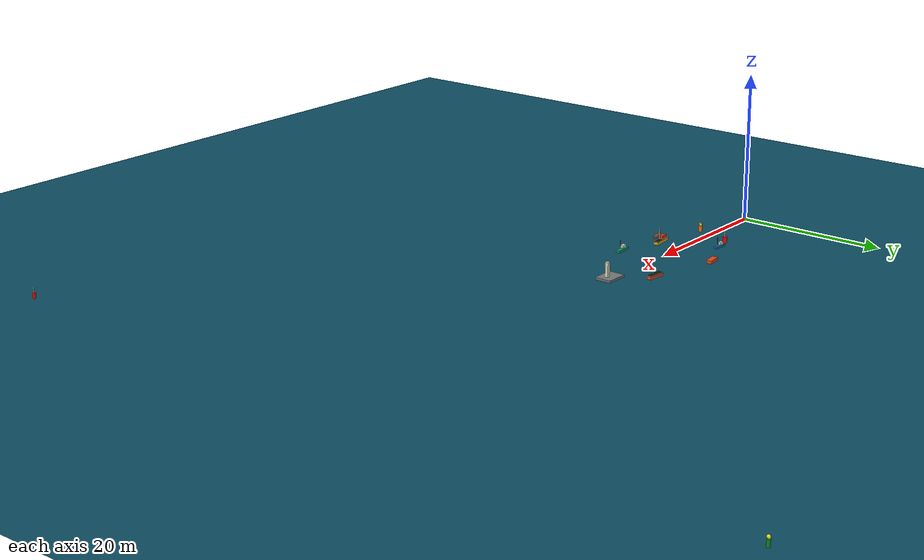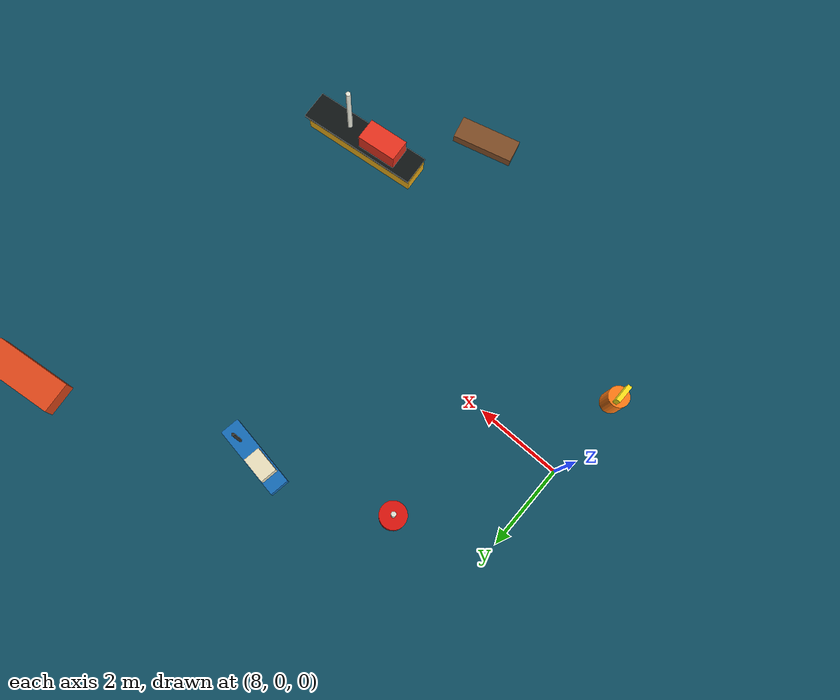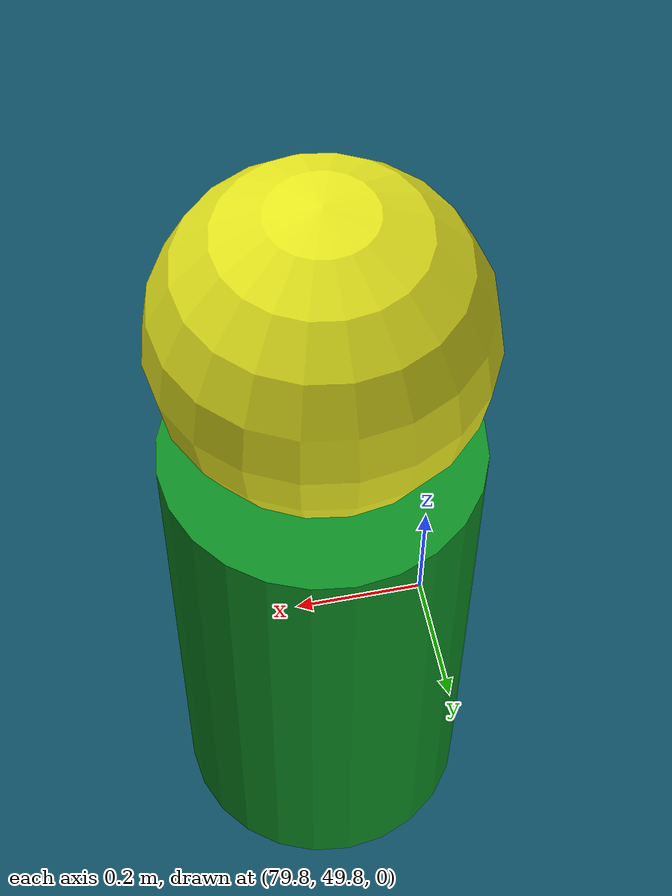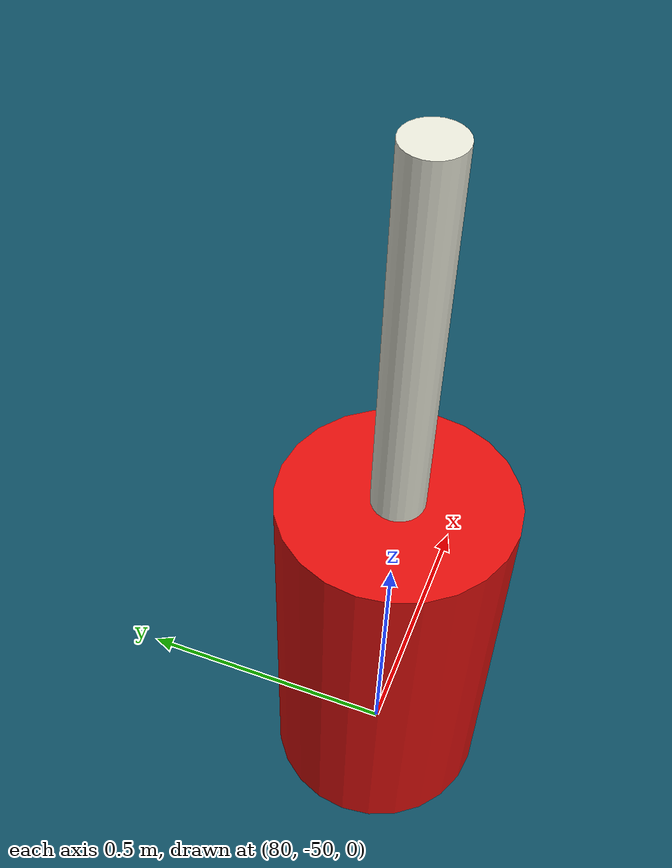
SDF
<?xml version="1.0" ?>
<sdf version="1.7">
  <world name="annotation_targets">
    <plugin name="gazebo_ros_state" filename="libgazebo_ros_state.so">
      <update_rate>30.0</update_rate>
    </plugin>

    <scene>
      <ambient>0.42 0.45 0.47 1</ambient>
      <background>0.62 0.68 0.70 1</background>
      <shadows>false</shadows>
      <fog>
        <type>linear</type>
        <color>0.70 0.74 0.76 1</color>
        <start>18.0</start>
        <end>120.0</end>
        <density>0.010</density>
      </fog>
    </scene>

    <physics name="default_physics" type="ode">
      <max_step_size>0.004</max_step_size>
      <real_time_update_rate>250</real_time_update_rate>
    </physics>

    <light name="soft_sun" type="directional">
      <pose>0 0 80 0 0 0</pose>
      <diffuse>0.70 0.70 0.68 1</diffuse>
      <specular>0.08 0.08 0.08 1</specular>
      <direction>-0.25 0.25 -0.9</direction>
      <cast_shadows>false</cast_shadows>
    </light>

    <model name="annotation_ocean_surface">
      <static>true</static>
      <link name="water">
        <visual name="water_visual">
          <pose>0 0 -0.04 0 0 0</pose>
          <geometry><plane><normal>0 0 1</normal><size>260 180</size></plane></geometry>
          <material>
            <ambient>0.04 0.20 0.26 0.95</ambient>
            <diffuse>0.05 0.30 0.38 0.95</diffuse>
            <specular>0.18 0.22 0.24 1</specular>
          </material>
        </visual>
      </link>
    </model>

    <model name="moving_vessel">
      <static>false</static>
      <pose>16 -3 0.42 0 0 0.10</pose>
      <link name="hull">
        <gravity>false</gravity>
        <inertial><mass>80</mass><inertia><ixx>18</ixx><ixy>0</ixy><ixz>0</ixz><iyy>55</iyy><iyz>0</iyz><izz>60</izz></inertia></inertial>
        <visual name="hull"><geometry><box><size>2.8 0.62 0.34</size></box></geometry><material><ambient>0.78 0.54 0.09 1</ambient><diffuse>0.95 0.70 0.10 1</diffuse></material></visual>
        <visual name="deck"><pose>0.05 0 0.25 0 0 0</pose><geometry><box><size>2.9 0.70 0.06</size></box></geometry><material><ambient>0.06 0.08 0.08 1</ambient><diffuse>0.06 0.08 0.08 1</diffuse></material></visual>
        <visual name="cabin"><pose>-0.45 0 0.50 0 0 0</pose><geometry><box><size>0.95 0.52 0.42</size></box></geometry><material><ambient>0.86 0.16 0.10 1</ambient><diffuse>0.92 0.20 0.12 1</diffuse></material></visual>
        <visual name="mast"><pose>0.45 0 1.08 0 0 0</pose><geometry><cylinder><radius>0.055</radius><length>1.35</length></cylinder></geometry><material><ambient>0.92 0.92 0.86 1</ambient><diffuse>0.92 0.92 0.86 1</diffuse></material></visual>
        <collision name="collision"><geometry><box><size>2.9 0.75 1.2</size></box></geometry></collision>
      </link>
    </model>

    <model name="small_fishing_boat">
      <static>false</static>
      <pose>13 4 0.34 0 0 -0.15</pose>
      <link name="hull">
        <gravity>false</gravity>
        <inertial><mass>42</mass><inertia><ixx>8</ixx><ixy>0</ixy><ixz>0</ixz><iyy>25</iyy><iyz>0</iyz><izz>28</izz></inertia></inertial>
        <visual name="hull"><geometry><box><size>1.7 0.44 0.28</size></box></geometry><material><ambient>0.08 0.42 0.72 1</ambient><diffuse>0.08 0.42 0.72 1</diffuse></material></visual>
        <visual name="cabin"><pose>-0.28 0 0.38 0 0 0</pose><geometry><box><size>0.58 0.38 0.30</size></box></geometry><material><ambient>0.86 0.82 0.68 1</ambient><diffuse>0.92 0.88 0.74 1</diffuse></material></visual>
        <visual name="mast"><pose>0.40 0 0.85 0 0 0</pose><geometry><cylinder><radius>0.035</radius><length>0.9</length></cylinder></geometry><material><ambient>0.20 0.20 0.18 1</ambient><diffuse>0.20 0.20 0.18 1</diffuse></material></visual>
        <collision name="collision"><geometry><box><size>1.85 0.55 0.95</size></box></geometry></collision>
      </link>
    </model>

    <model name="fishnet_buoy">
      <static>false</static>
      <pose>8 -2 0.30 0 0 0</pose>
      <link name="body">
        <gravity>false</gravity>
        <inertial><mass>8</mass><inertia><ixx>0.8</ixx><ixy>0</ixy><ixz>0</ixz><iyy>0.8</iyy><iyz>0</iyz><izz>0.5</izz></inertia></inertial>
        <visual name="float"><geometry><cylinder><radius>0.24</radius><length>0.78</length></cylinder></geometry><material><ambient>0.95 0.44 0.08 1</ambient><diffuse>1.0 0.48 0.08 1</diffuse></material></visual>
        <visual name="flag"><pose>0 0 0.62 0 0 0</pose><geometry><box><size>0.10 0.42 0.30</size></box></geometry><material><ambient>0.95 0.82 0.10 1</ambient><diffuse>1.0 0.90 0.10 1</diffuse></material></visual>
        <collision name="collision"><geometry><cylinder><radius>0.28</radius><length>1.05</length></cylinder></geometry></collision>
      </link>
    </model>

    <model name="floating_obstacle">
      <static>false</static>
      <pose>10 3 0.26 0 0 0</pose>
      <link name="body">
        <gravity>false</gravity>
        <inertial><mass>14</mass><inertia><ixx>1</ixx><ixy>0</ixy><ixz>0</ixz><iyy>1</iyy><iyz>0</iyz><izz>0.8</izz></inertia></inertial>
        <visual name="body"><geometry><cylinder><radius>0.30</radius><length>0.80</length></cylinder></geometry><material><ambient>0.72 0.06 0.04 1</ambient><diffuse>0.86 0.08 0.05 1</diffuse></material></visual>
        <visual name="reflector"><pose>0 0 0.64 0 0 0</pose><geometry><cylinder><radius>0.055</radius><length>0.55</length></cylinder></geometry><material><ambient>0.90 0.90 0.84 1</ambient><diffuse>0.90 0.90 0.84 1</diffuse></material></visual>
        <collision name="collision"><geometry><cylinder><radius>0.34</radius><length>1.05</length></cylinder></geometry></collision>
      </link>
    </model>

    <model name="drift_debris">
      <static>false</static>
      <pose>14 -5 0.18 0 0 0.25</pose>
      <link name="debris">
        <gravity>false</gravity>
        <inertial><mass>12</mass><inertia><ixx>1.5</ixx><ixy>0</ixy><ixz>0</ixz><iyy>4</iyy><iyz>0</iyz><izz>4</izz></inertia></inertial>
        <visual name="body"><geometry><box><size>1.45 0.55 0.24</size></box></geometry><material><ambient>0.42 0.25 0.12 1</ambient><diffuse>0.50 0.30 0.15 1</diffuse></material></visual>
        <collision name="collision"><geometry><box><size>1.55 0.65 0.35</size></box></geometry></collision>
      </link>
    </model>

    <model name="survey_boat">
      <static>false</static>
      <pose>22 -5 0.36 0 0 0.05</pose>
      <link name="hull">
        <gravity>false</gravity>
        <inertial><mass>55</mass><inertia><ixx>10</ixx><ixy>0</ixy><ixz>0</ixz><iyy>34</iyy><iyz>0</iyz><izz>38</izz></inertia></inertial>
        <visual name="hull"><geometry><box><size>2.15 0.54 0.30</size></box></geometry><material><ambient>0.04 0.48 0.32 1</ambient><diffuse>0.05 0.58 0.40 1</diffuse></material></visual>
        <visual name="cabin"><pose>-0.25 0 0.42 0 0 0</pose><geometry><box><size>0.72 0.44 0.32</size></box></geometry><material><ambient>0.78 0.82 0.76 1</ambient><diffuse>0.84 0.88 0.82 1</diffuse></material></visual>
        <visual name="mast"><pose>0.45 0 0.95 0 0 0</pose><geometry><cylinder><radius>0.04</radius><length>1.0</length></cylinder></geometry><material><ambient>0.22 0.22 0.20 1</ambient><diffuse>0.22 0.22 0.20 1</diffuse></material></visual>
        <collision name="collision"><geometry><box><size>2.25 0.65 1.05</size></box></geometry></collision>
      </link>
    </model>

    <model name="service_boat">
      <static>false</static>
      <pose>28 4 0.38 0 0 -0.10</pose>
      <link name="hull">
        <gravity>false</gravity>
        <inertial><mass>60</mass><inertia><ixx>12</ixx><ixy>0</ixy><ixz>0</ixz><iyy>40</iyy><iyz>0</iyz><izz>44</izz></inertia></inertial>
        <visual name="hull"><geometry><box><size>2.35 0.62 0.34</size></box></geometry><material><ambient>0.82 0.28 0.08 1</ambient><diffuse>0.96 0.34 0.10 1</diffuse></material></visual>
        <visual name="deck"><pose>0.05 0 0.26 0 0 0</pose><geometry><box><size>2.2 0.66 0.06</size></box></geometry><material><ambient>0.08 0.08 0.08 1</ambient><diffuse>0.10 0.10 0.10 1</diffuse></material></visual>
        <visual name="mast"><pose>0.30 0 0.92 0 0 0</pose><geometry><cylinder><radius>0.04</radius><length>1.0</length></cylinder></geometry><material><ambient>0.90 0.88 0.78 1</ambient><diffuse>0.90 0.88 0.78 1</diffuse></material></visual>
        <collision name="collision"><geometry><box><size>2.45 0.75 1.05</size></box></geometry></collision>
      </link>
    </model>

    <model name="floating_container">
      <static>false</static>
      <pose>18 6 0.20 0 0 0.12</pose>
      <link name="box">
        <gravity>false</gravity>
        <inertial><mass>16</mass><inertia><ixx>2</ixx><ixy>0</ixy><ixz>0</ixz><iyy>5</iyy><iyz>0</iyz><izz>5</izz></inertia></inertial>
        <visual name="body"><geometry><box><size>1.85 0.72 0.42</size></box></geometry><material><ambient>0.72 0.22 0.08 1</ambient><diffuse>0.88 0.28 0.10 1</diffuse></material></visual>
        <collision name="collision"><geometry><box><size>1.90 0.80 0.48</size></box></geometry></collision>
      </link>
    </model>

    <model name="research_platform">
      <static>false</static>
      <pose>32 0 0.45 0 0 0</pose>
      <link name="platform">
        <gravity>false</gravity>
        <inertial><mass>120</mass><inertia><ixx>45</ixx><ixy>0</ixy><ixz>0</ixz><iyy>45</iyy><iyz>0</iyz><izz>70</izz></inertia></inertial>
        <visual name="deck"><geometry><box><size>3.0 2.2 0.30</size></box></geometry><material><ambient>0.38 0.40 0.40 1</ambient><diffuse>0.46 0.48 0.48 1</diffuse></material></visual>
        <visual name="tower"><pose>0.55 0 1.15 0 0 0</pose><geometry><box><size>0.42 0.42 1.90</size></box></geometry><material><ambient>0.85 0.84 0.74 1</ambient><diffuse>0.90 0.88 0.78 1</diffuse></material></visual>
        <collision name="collision"><geometry><box><size>3.2 2.4 2.2</size></box></geometry></collision>
      </link>
    </model>

    <model name="channel_buoy_north">
      <static>true</static>
      <pose>80 50 0.32 0 0 0</pose>
      <link name="body">
        <visual name="body"><geometry><cylinder><radius>0.20</radius><length>0.75</length></cylinder></geometry><material><ambient>0.05 0.45 0.10 1</ambient><diffuse>0.05 0.55 0.14 1</diffuse></material></visual>
        <visual name="top"><pose>0 0 0.58 0 0 0</pose><geometry><sphere><radius>0.20</radius></sphere></geometry><material><ambient>0.80 0.80 0.10 1</ambient><diffuse>0.90 0.90 0.12 1</diffuse></material></visual>
        <collision name="collision"><geometry><cylinder><radius>0.25</radius><length>1.0</length></cylinder></geometry></collision>
      </link>
    </model>

    <model name="channel_buoy_south">
      <static>true</static>
      <pose>80 -50 0.32 0 0 0</pose>
      <link name="body">
        <visual name="body"><geometry><cylinder><radius>0.20</radius><length>0.75</length></cylinder></geometry><material><ambient>0.75 0.05 0.04 1</ambient><diffuse>0.88 0.06 0.05 1</diffuse></material></visual>
        <visual name="pole"><pose>0 0 0.65 0 0 0</pose><geometry><cylinder><radius>0.045</radius><length>0.75</length></cylinder></geometry><material><ambient>0.85 0.85 0.80 1</ambient><diffuse>0.90 0.90 0.84 1</diffuse></material></visual>
        <collision name="collision"><geometry><cylinder><radius>0.25</radius><length>1.1</length></cylinder></geometry></collision>
      </link>
    </model>
  </world>
</sdf>
